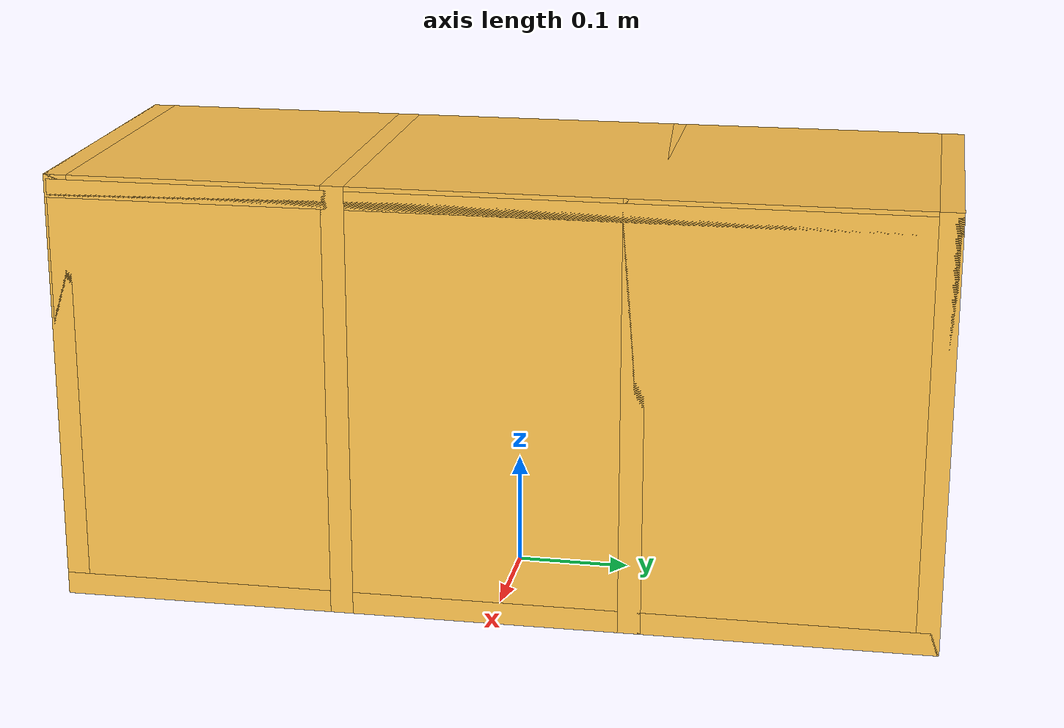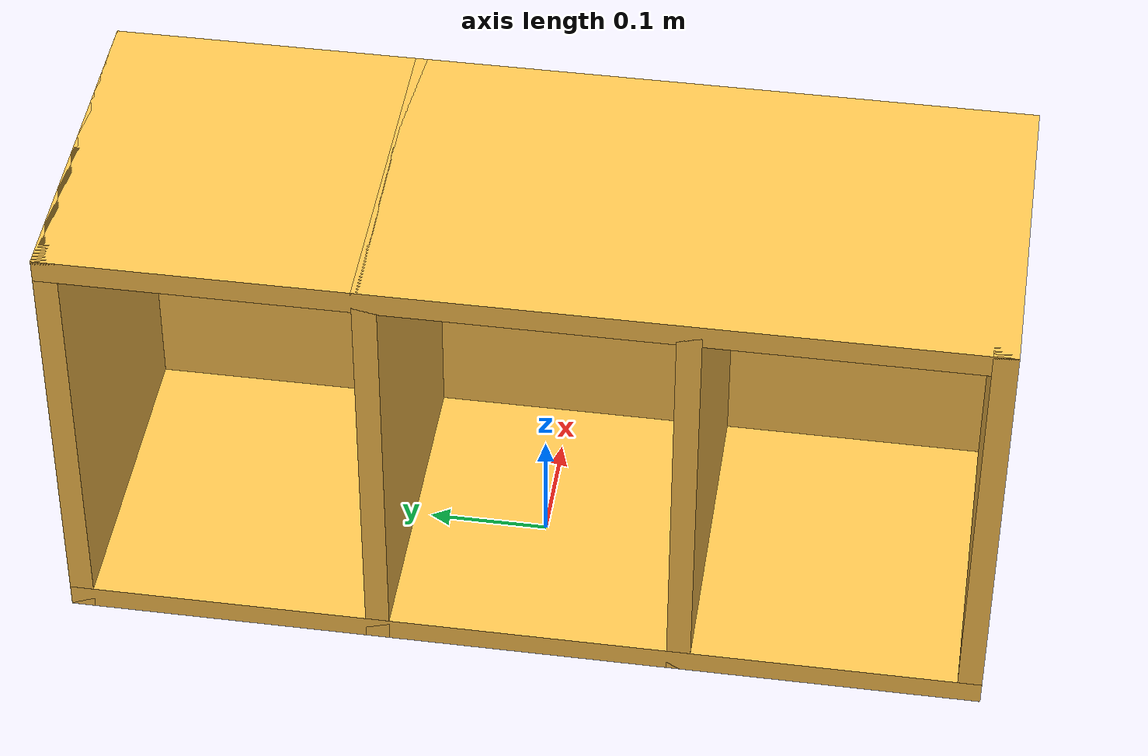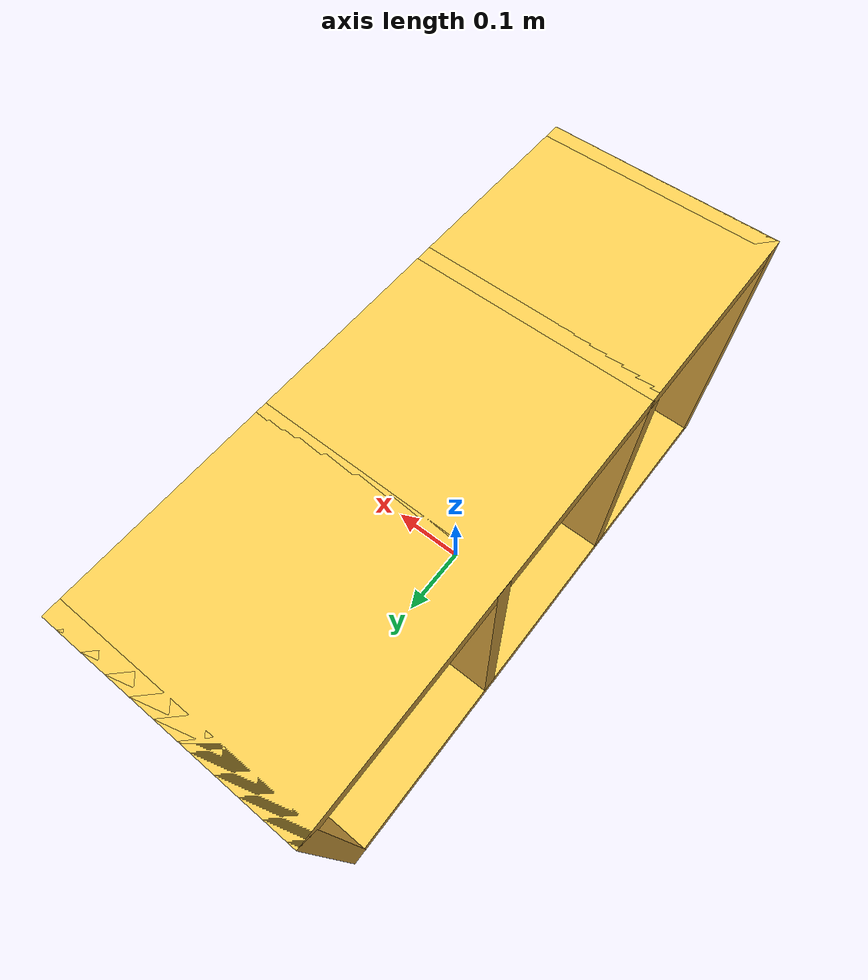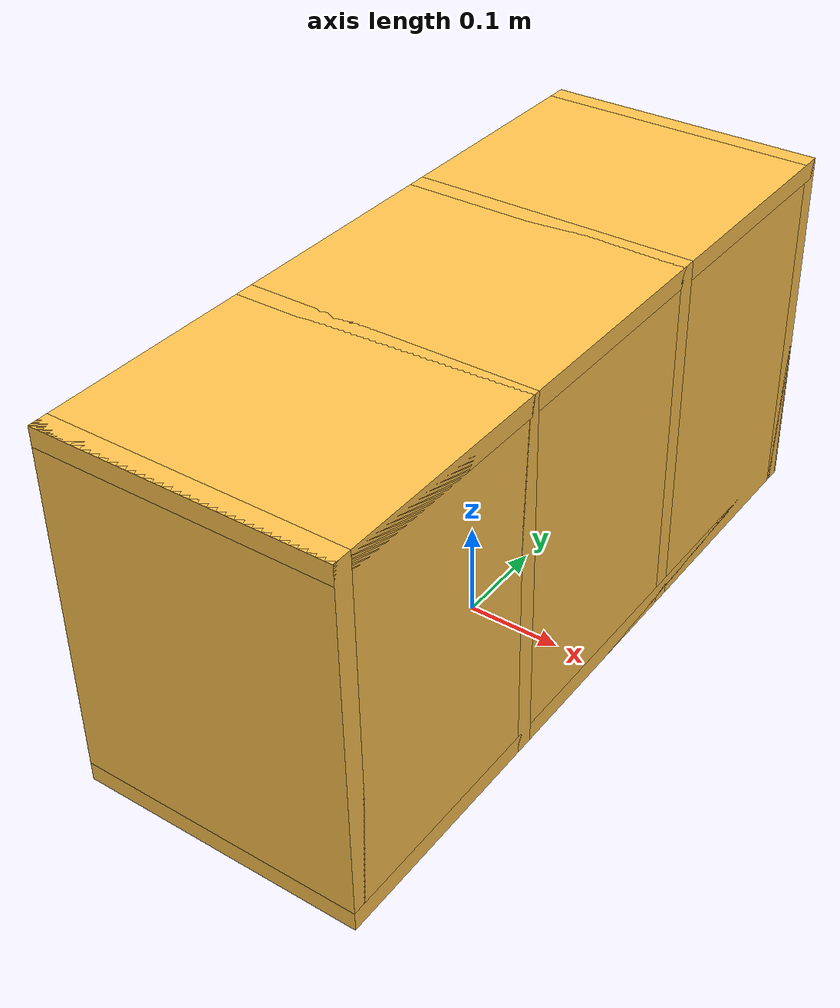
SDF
<?xml version='1.0'?>
<sdf version='1.6'>
  <model name='Wall_Cabinet_15x30'>
    <pose frame=''>0 0 0 0 0  0</pose>
    <link name='Wall_0'>
     <pose frame=''>0 0.374 0.192 0 -0 0</pose>
	<inertial>
	  <mass>0.9882</mass>
	   <inertia>
	     <ixx>0.0072</ixx>
	     <iyy>0.0194</iyy>
	     <izz>0.0122</izz>
    	     <ixy>0</ixy>
	     <ixz>0</ixz>
	     <iyz>0</iyz>
	   </inertia>
	</inertial>
      <collision name='Wall_0_Collision'>
        <geometry>
          <box>
            <size>0.296 0.02 0.384</size>
          </box>
        </geometry>

      </collision>
      <visual name='Wall_0_Visual'>

        <geometry>
          <box>
            <size>0.296 0.02 0.384</size>
          </box>
        </geometry>
        <material>
          <script>
            <uri>file://media/materials/scripts/gazebo.material</uri>
            <name>Gazebo/Grey</name>
          </script>
          <ambient>1 0.764706 0.305882 1</ambient>
        </material>
      </visual>
     </link>

   <joint type="fixed" name="0_2">
      <pose frame=''>0 0 0.192 0 0 0</pose>
         <parent>Wall_2</parent>
  	 <child>Wall_0</child>
	 <axis>
	   <xyz> 0 0 1</xyz>
	 </axis>
       </joint>
   <joint type="fixed" name="0_4">
  <pose frame=''> 0 0 -0.192 0 0 0</pose>
         <parent>Wall_4</parent>
  	 <child>Wall_0</child>
	 <axis>
	   <xyz>0 0 1</xyz>
	 </axis>
       </joint>

   <joint type="fixed" name="0_15">
      <pose frame=''>0.148 0 0 0 0 0</pose>
         <parent>Wall_15</parent>
  	 <child>Wall_0</child>
	 <axis>
	   <xyz>1 0 0</xyz>
	 </axis>
       </joint>

    <link name='Wall_11'>
     <pose frame=''>0 -0.132768 0.192 0 -0 0</pose>
	<inertial>
	  <mass>0.9882</mass>
	   <inertia>
	     <ixx>0.0072</ixx>
	     <iyy>0.0194</iyy>
	     <izz>0.0122</izz>
    	     <ixy>0</ixy>
	     <ixz>0</ixz>
	     <iyz>0</iyz>
	   </inertia>
	</inertial>
      <collision name='Wall_11_Collision'>
        <geometry>
          <box>
            <size>0.296 0.02 0.384</size>
          </box>
        </geometry>

      </collision>
      <visual name='Wall_11_Visual'>

        <geometry>
          <box>
            <size>0.296 0.02 0.384</size>
          </box>
        </geometry>
        <material>
          <script>
            <uri>file://media/materials/scripts/gazebo.material</uri>
            <name>Gazebo/Grey</name>
          </script>
          <ambient>1 0.764706 0.305882 1</ambient>
        </material>
      </visual>
     </link>
<joint type="fixed" name="11_2">
      <pose frame=''> 0 0 0.192 0 0 0</pose>
         <parent>Wall_2</parent>
  	 <child>Wall_11</child>
	 <axis>
	   <xyz>0 0 1</xyz>
	 </axis>
       </joint>
   <joint type="fixed" name="11_4">
          <pose frame=''> 0 0 -0.192 0 0 0</pose>
         <parent>Wall_4</parent>
  	 <child>Wall_11</child>
	 <axis>
	   <xyz>0 0 1</xyz>
	 </axis>
       </joint>

   <joint type="fixed" name="11_15">
      <pose frame=''>0.148 0 0  0 0 0</pose>
         <parent>Wall_15</parent>
  	 <child>Wall_11</child>
	 <axis>
	   <xyz>1 0 0</xyz>
	 </axis>
       </joint>

    <link name='Wall_15'>
<pose frame=''>0.138 0 0.190 0 0 0</pose>
	<inertial>
	  <mass>2.5241</mass>
	   <inertia>
	     <ixx>0.0305</ixx>
	     <iyy>0.1229</iyy>
	     <izz>0.1532</izz>
    	     <ixy>0</ixy>
	     <ixz>0</ixz>
	     <iyz>0</iyz>
	   </inertia>
	</inertial>
      <collision name='Wall_15_Collision'>
        <geometry>
          <box>
            <size>0.02 0.764 0.38</size>
          </box>
        </geometry>

      </collision>
      <visual name='Wall_15_Visual'>

        <geometry>
          <box>
            <size>0.02  0.764 0.38</size>
          </box>
        </geometry>
        <material>
          <script>
            <uri>file://media/materials/scripts/gazebo.material</uri>
            <name>Gazebo/Grey</name>
          </script>
          <ambient>1 0.764706 0.305882 1</ambient>
        </material>
      </visual>
      </link>
<joint type="fixed" name="15_2">
      <pose frame=''>0 0 0.190 0 0 0</pose>
         <parent>Wall_2</parent>
  	 <child>Wall_15</child>
	 <axis>
	   <xyz>0 0 1</xyz>
	 </axis>
       </joint>

   <joint type="fixed" name="15_4">
      <pose frame=''>0  0 -0.190 0 0 0</pose>
         <parent>Wall_4</parent>
  	 <child>Wall_15</child>
	 <axis>
	   <xyz>0 0 1</xyz>
	 </axis>
       </joint>

    <link name='Wall_2'>
     <pose frame=''>0 0 0.374 0 0 0 </pose>
	<inertial>
	  <mass>1.9765</mass>
	   <inertia>
	     <ixx>0.0145</ixx>
	     <iyy>0.1116</iyy>
	     <izz>0.0972</izz>
    	     <ixy>0</ixy>
	     <ixz>0</ixz>
	     <iyz>0</iyz>
	   </inertia>
	</inertial>
      <collision name='Wall_2_Collision'>
        <geometry>
          <box>
            <size>0.296 0.768 0.02 </size>
          </box>
        </geometry>
        </collision>
      <visual name='Wall_2_Visual'>
         <geometry>
          <box>
            <size>0.296 0.768 0.02</size>
          </box>
        </geometry>
        <material>
          <script>
            <uri>file://media/materials/scripts/gazebo.material</uri>
            <name>Gazebo/Grey</name>
          </script>
          <ambient>1 0.764706 0.305882 1</ambient>
        </material>
      </visual>

    </link>

    <link name='Wall_4'>
        <pose frame=''>0 0 0.01 0 0 0</pose>
	<inertial>
	  <mass>1.9765</mass>
	   <inertia>
	     <ixx>0.0145</ixx>
	     <iyy>0.1116</iyy>
	     <izz>0.0972</izz>
    	     <ixy>0</ixy>
	     <ixz>0</ixz>
	     <iyz>0</iyz>
	   </inertia>
	</inertial>
      <collision name='Wall_4_Collision'>
        <geometry>
          <box>
            <size>0.296 0.768 0.02 </size>
          </box>
        </geometry>

      </collision>
      <visual name='Wall_4_Visual'>

        <geometry>
          <box>
            <size>0.296 0.768 0.02</size>
          </box>
        </geometry>
        <material>
          <script>
            <uri>file://media/materials/scripts/gazebo.material</uri>
            <name>Gazebo/Grey</name>
          </script>
          <ambient>1 0.764706 0.305882 1</ambient>
        </material>
      </visual>
      <pose frame=''>-0.181124 0 0 0 0 -1.5708</pose>
    </link>

    <link name='Wall_6'>
 <pose frame=''>0 -0.374 0.192 0 -0 0</pose>
	<inertial>
	  <mass>0.9882</mass>
	   <inertia>
	     <ixx>0.0072</ixx>
	     <iyy>0.0194</iyy>
	     <izz>0.0122</izz>
    	     <ixy>0</ixy>
	     <ixz>0</ixz>
	     <iyz>0</iyz>
	   </inertia>
	</inertial>
      <collision name='Wall_6_Collision'>
        <geometry>
          <box>
            <size> 0.296 0.02 0.384</size>
          </box>
        </geometry>

      </collision>
      <visual name='Wall_6_Visual'>

        <geometry>
          <box>
            <size>0.296 0.02 0.384</size>
          </box>
        </geometry>
        <material>
          <script>
            <uri>file://media/materials/scripts/gazebo.material</uri>
            <name>Gazebo/Grey</name>
          </script>
          <ambient>1 0.764706 0.305882 1</ambient>
        </material>
      </visual>
    </link>
<joint type="fixed" name="6_2">
      <pose frame=''> 0 0 0.192 0 0 0</pose>
         <parent>Wall_2</parent>
  	 <child>Wall_6</child>
	 <axis>
	   <xyz>0 0 1</xyz>
	 </axis>
       </joint>
   <joint type="fixed" name="6_4">
          <pose frame=''> 0 0 -0.192 0 0 0</pose>
         <parent>Wall_4</parent>
  	 <child>Wall_6</child>
	 <axis>
	   <xyz>0 0 1</xyz>
	 </axis>
       </joint>

   <joint type="fixed" name="6_15">
      <pose frame=''>0.148 0 0  0 0 0</pose>
         <parent>Wall_15</parent>
  	 <child>Wall_6</child>
	 <axis>
	   <xyz>1 0 0</xyz>
	 </axis>
       </joint>

    <link name='Wall_8'>
      <pose frame=''>0 0.120833 0.192 0 -0 0</pose>
	<inertial>
	  <mass>0.9882</mass>
	   <inertia>
	     <ixx>0.0072</ixx>
	     <iyy>0.0194</iyy>
	     <izz>0.0122</izz>
    	     <ixy>0</ixy>
	     <ixz>0</ixz>
	     <iyz>0</iyz>
	   </inertia>
	</inertial>
      <collision name='Wall_8_Collision'>
        <geometry>
          <box>
            <size>0.296 0.02 0.384</size>
          </box>
        </geometry>

      </collision>
      <visual name='Wall_8_Visual'>

        <geometry>
          <box>
            <size>0.296 0.02 0.384</size>
          </box>
        </geometry>
        <material>
          <script>
            <uri>file://media/materials/scripts/gazebo.material</uri>
            <name>Gazebo/Grey</name>
          </script>
          <ambient>1 0.764706 0.305882 1</ambient>
        </material>
      </visual>
    </link>
 <joint type="fixed" name="8_2">
      <pose frame=''> 0 0 0.192 0 0 0</pose>
         <parent>Wall_2</parent>
  	 <child>Wall_8</child>
	 <axis>
	   <xyz>0 0 1</xyz>
	 </axis>
       </joint>
   <joint type="fixed" name="8_4">
          <pose frame=''> 0 0 -0.192 0 0 0</pose>
         <parent>Wall_4</parent>
  	 <child>Wall_8</child>
	 <axis>
	   <xyz>0 0 1</xyz>
	 </axis>
       </joint>

   <joint type="fixed" name="8_15">
      <pose frame=''>0.148 0 0  0 0 0</pose>
         <parent>Wall_15</parent>
  	 <child>Wall_8</child>
	 <axis>
	   <xyz>1 0 0</xyz>
	 </axis>
       </joint>
    <static>1</static>
  </model>
</sdf>
